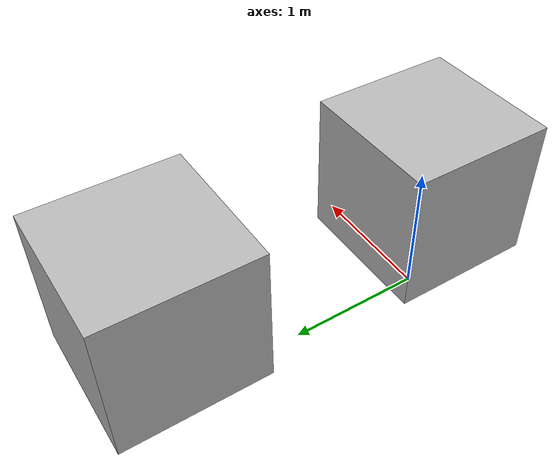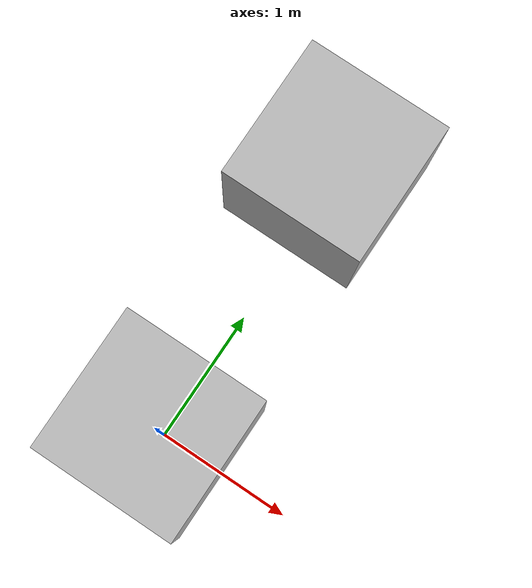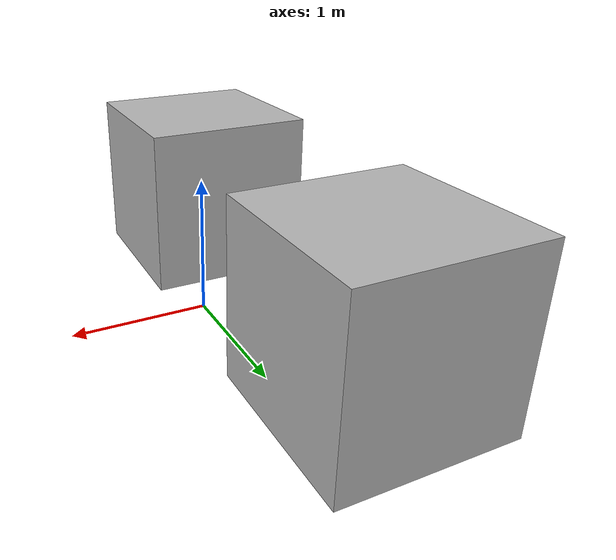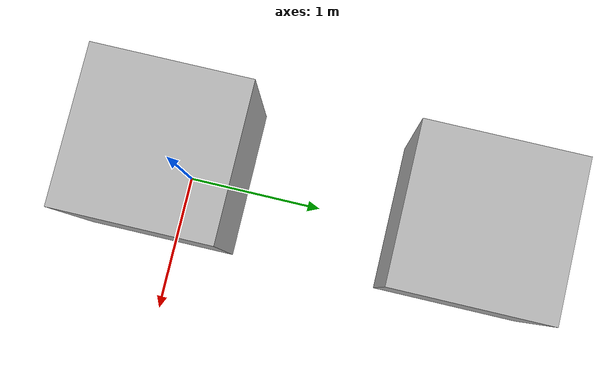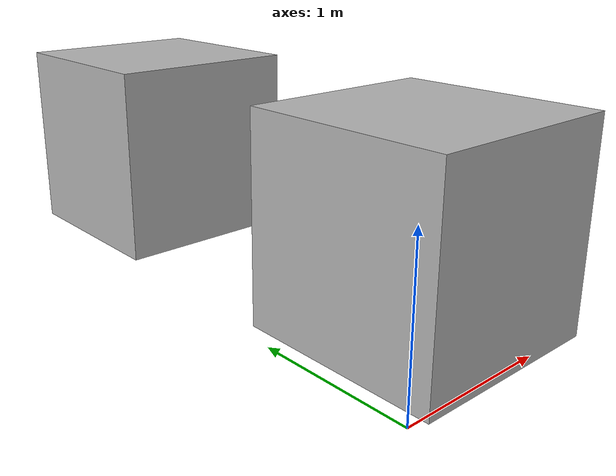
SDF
<?xml version="1.0" ?>
<sdf version="1.4">
  <world name="default">
    <physics type="ode">
      <gravity>0.0 0.0 0.0</gravity>
      <ode>
        <solver>
          <type>quick</type>
          <iters>250</iters>
          <precon_iters>0</precon_iters>
          <sor>1.400000</sor>
        </solver>
        <constraints>
          <cfm>0.000000</cfm>
          <erp>0.200000</erp>
          <contact_max_correcting_vel>0.000000</contact_max_correcting_vel>
          <contact_surface_layer>0.00000</contact_surface_layer>
        </constraints>
      </ode>
      <bullet>
        <solver>
          <type>sequential_impulse</type>
          <iters>250</iters>
          <sor>1.400000</sor>
        </solver>
        <constraints>
          <cfm>0.000000</cfm>
          <erp>0.200000</erp>
          <split_impulse>true</split_impulse>
          <split_impulse_penetration_threshold>-0.01</split_impulse_penetration_threshold>
          <contact_surface_layer>0.01000</contact_surface_layer>
        </constraints>
      </bullet>
      <simbody>
        <accuracy>0.001</accuracy>
        <max_transient_velocity>0.01</max_transient_velocity>
        <contact>
          <stiffness>1e8</stiffness>
          <dissipation>10</dissipation>
          <static_friction>0.15</static_friction>
          <dynamic_friction>0.1</dynamic_friction>
          <viscous_friction>0.0</viscous_friction>
        </contact>
      </simbody>
      <real_time_update_rate>0.000000</real_time_update_rate>
      <max_step_size>0.001000</max_step_size>
    </physics>

    <include>
      <uri>model://sun</uri>
    </include>

    <!-- test contributed by jesper -->
    <model name="model">
      <pose>0 0 1.0 0 0 0</pose>
      <link name="link">
        <collision name="collision">
          <pose>0 0 0 0 0 0</pose>
          <geometry>
            <box>
              <size>1 1 1</size>
            </box>
          </geometry>
          <surface>
            <contact>
              <ode>
                <min_depth>0.01</min_depth>
              </ode>
            </contact>
            <friction>
              <bullet>
                <friction>1</friction>
                <friction2>1</friction2>
              </bullet>
              <ode>
                <mu>1</mu>
                <mu2>1</mu2>
              </ode>
            </friction>
          </surface>
        </collision>
        <visual name="visual">
          <pose>0 0 0 0 0 0</pose>
          <geometry>
            <box>
              <size>1 1 1</size>
            </box>
          </geometry>
        </visual>
        <inertial>
          <mass>100.0</mass>
          <pose>0 0 0 0 0 0</pose>
          <inertia>
            <ixx>1.1</ixx>
            <iyy>1.2</iyy>
            <izz>1.3</izz>
            <ixy>0.0</ixy>
            <ixz>0.0</ixz>
            <iyz>0.0</iyz>
          </inertia>
        </inertial>
      </link>

    </model>

    <model name="model_with_cg_offset">
      <pose>0 2.0 1.0 0 0 0</pose>
      <link name="link">
        <collision name="collision">
          <pose>0 0 0 0 0 0</pose>
          <geometry>
            <box>
              <size>1 1 1</size>
            </box>
          </geometry>
          <surface>
            <contact>
              <ode>
                <min_depth>0.01</min_depth>
              </ode>
            </contact>
            <friction>
              <bullet>
                <friction>1</friction>
                <friction2>1</friction2>
              </bullet>
              <ode>
                <mu>1</mu>
                <mu2>1</mu2>
              </ode>
            </friction>
          </surface>
        </collision>
        <visual name="visual">
          <pose>0 0 0 0 0 0</pose>
          <geometry>
            <box>
              <size>1 1 1</size>
            </box>
          </geometry>
        </visual>
        <inertial>
          <mass>100.0</mass>
          <pose>3.0 1.0 0 0 0 0</pose>
          <inertia>
            <ixx>1.1</ixx>
            <iyy>1.2</iyy>
            <izz>1.3</izz>
            <ixy>0.0</ixy>
            <ixz>0.0</ixz>
            <iyz>0.0</iyz>
          </inertia>
        </inertial>
      </link>

    </model>
  </world>
</sdf>
